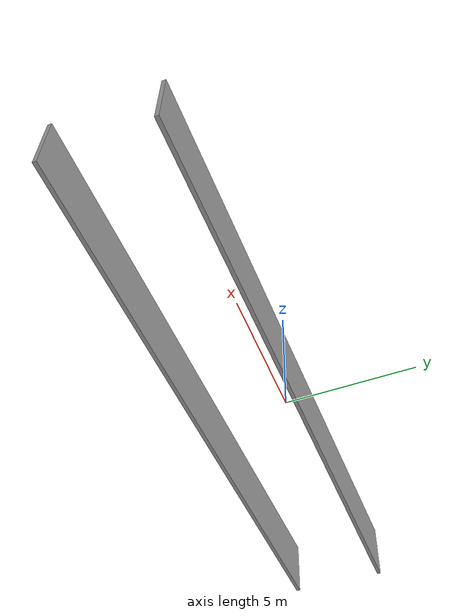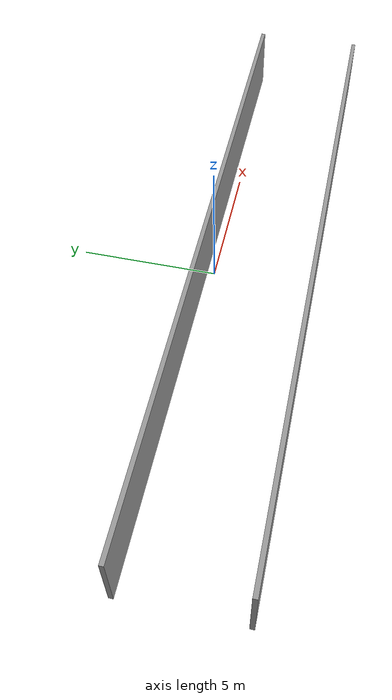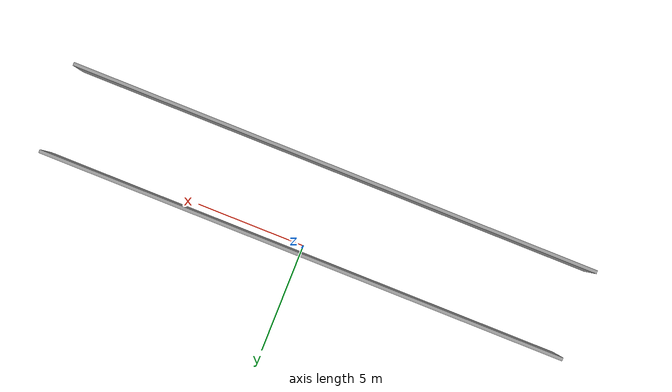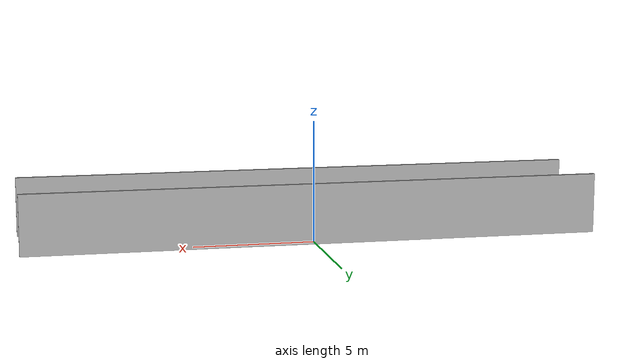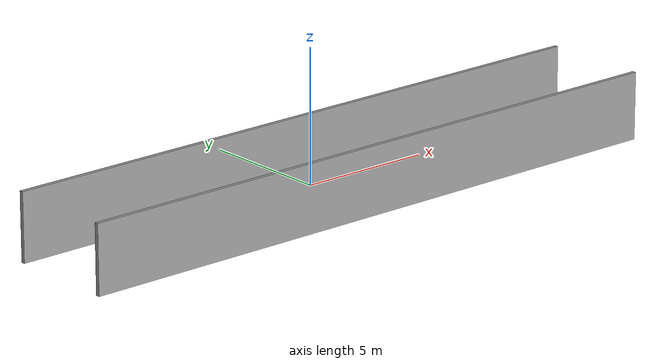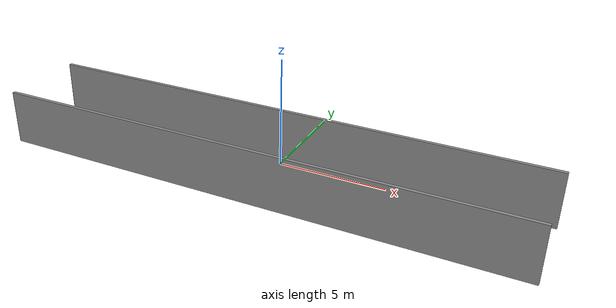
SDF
<?xml version='1.0'?>
<sdf version='1.6'>
  <model name='wall'>
    <pose frame=''>-0.052788 -1.6525 0 0 -0 0</pose>
    <link name='Wall_6'>
      <collision name='Wall_6_Collision'>
        <geometry>
          <box>
            <size>24 0.15 2.5</size>
          </box>
        </geometry>
        <pose frame=''>0 0 1.25 0 -0 0</pose>
      </collision>
      <visual name='Wall_6_Visual'>
        <pose frame=''>0 0 1.25 0 -0 0</pose>
        <geometry>
          <box>
            <size>24 0.15 2.5</size>
          </box>
        </geometry>
        <material>
          <script>
            <uri>file://media/materials/scripts/gazebo.material</uri>
            <name>Gazebo/Grey</name>
          </script>
          <ambient>1 1 1 1</ambient>
        </material>
        <meta>
          <layer>0</layer>
        </meta>
      </visual>
      <pose frame=''>-0.008663 1.99683 0 0 -0 0</pose>
    </link>
    <link name='Wall_8'>
      <collision name='Wall_8_Collision'>
        <geometry>
          <box>
            <size>24 0.15 2.5</size>
          </box>
        </geometry>
        <pose frame=''>0 0 1.25 0 -0 0</pose>
      </collision>
      <visual name='Wall_8_Visual'>
        <pose frame=''>0 0 1.25 0 -0 0</pose>
        <geometry>
          <box>
            <size>24 0.15 2.5</size>
          </box>
        </geometry>
        <material>
          <script>
            <uri>file://media/materials/scripts/gazebo.material</uri>
            <name>Gazebo/Grey</name>
          </script>
          <ambient>1 1 1 1</ambient>
        </material>
        <meta>
          <layer>0</layer>
        </meta>
      </visual>
      <pose frame=''>0.008662 -1.99683 0 0 -0 3.14159</pose>
    </link>
    <static>1</static>
  </model>
</sdf>
